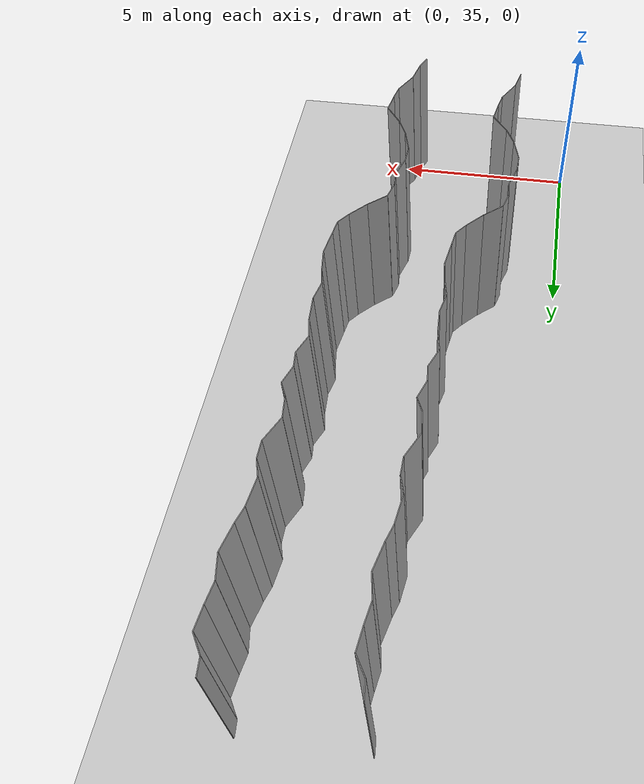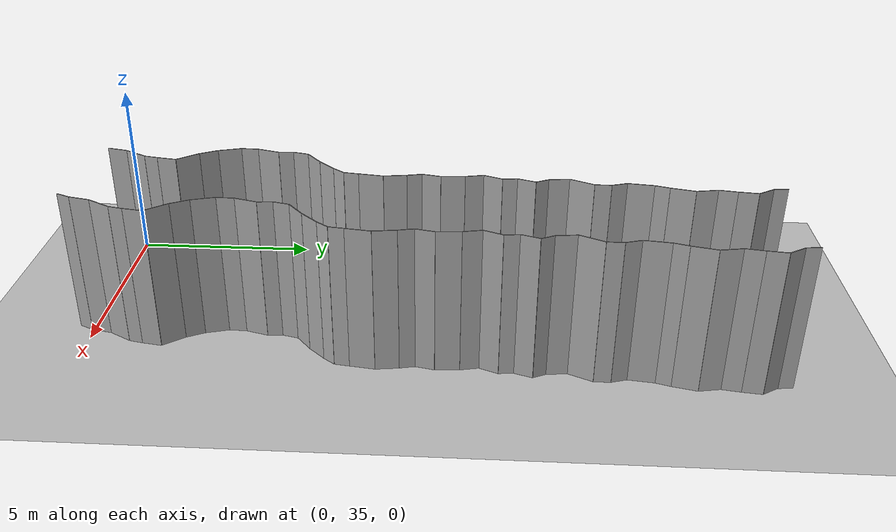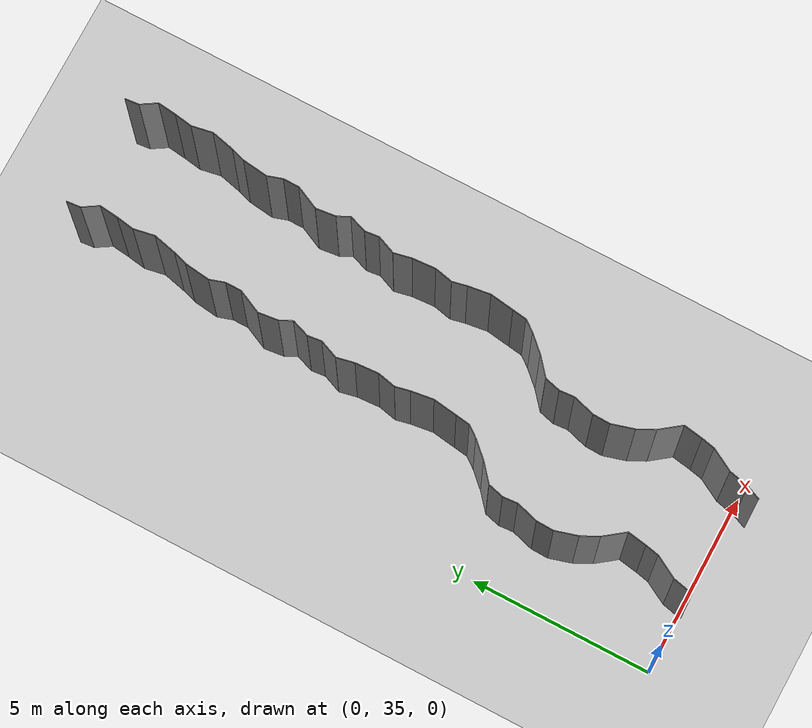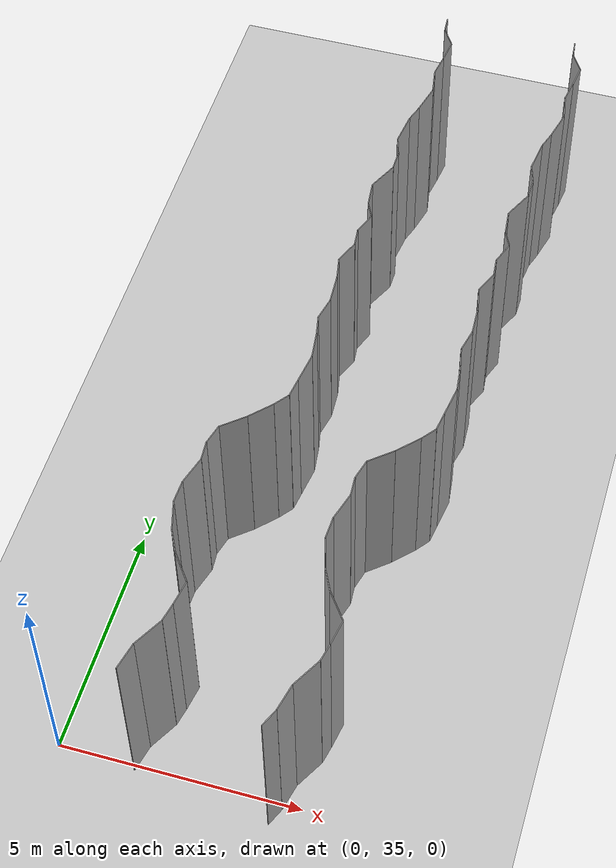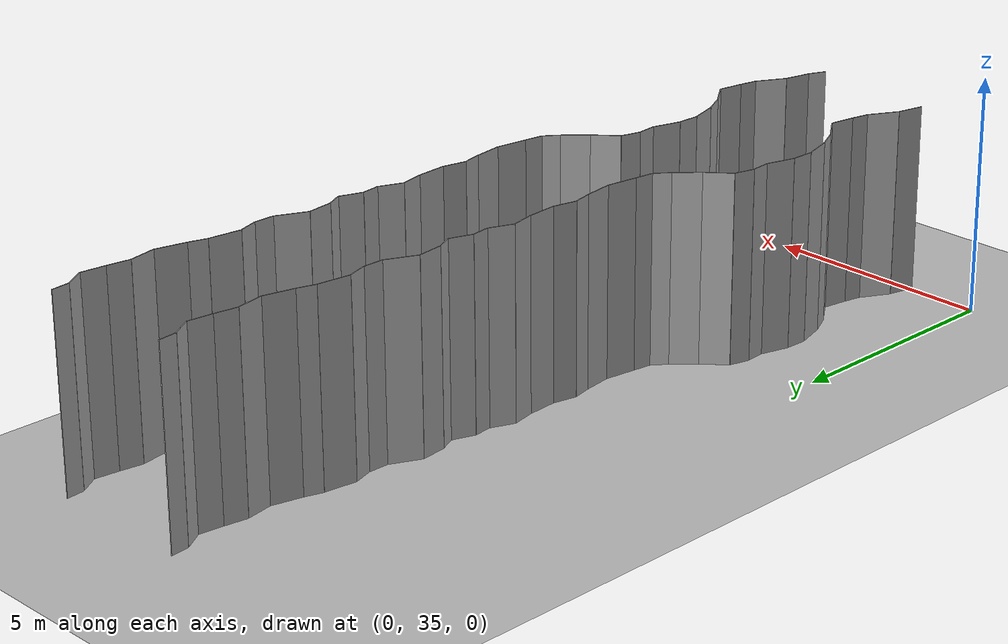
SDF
<sdf version="1.6">
 <world name="default">
  <model name="ground_plane">
   <static>1</static>
   <link name="link">
    <collision name="collision">
     <geometry><plane><normal>0 0 1</normal><size>200 200</size></plane></geometry>
     <surface><friction><ode><mu>100</mu><mu2>50</mu2></ode></friction></surface>
    </collision>
    <visual name="visual">
     <cast_shadows>0</cast_shadows>
     <geometry><plane><normal>0 0 1</normal><size>200 200</size></plane></geometry>
     <material>
      <script><uri>file://media/materials/scripts/gazebo.material</uri><name>Gazebo/Grey</name></script>
     </material>
    </visual>
   </link>
   <pose>0 100 0 0 -0 0</pose>
  </model>
  <model name="wall_149">
   <static>1</static>
   <pose>4.525526112197818 34.72610325198377 2 0 0 -0.40956759334759857</pose>
   <link name="link">
    <collision name="collision"><geometry><box><size>0.02 0.401568903811 4</size></box></geometry></collision>
    <visual name="visual">
     <material>
      <script><name>Gazebo/Grey</name><uri>file://media/materials/scripts/gazebo.material</uri></script>
     </material>
     <geometry><box><size>0.02 0.401568903811 4</size></box></geometry>
    </visual>
   </link>
  </model>
  <model name="wall_150">
   <static>1</static>
   <pose>1.669319965520479 35.19154989431149 2 0 0 -0.2231867968749821</pose>
   <link name="link">
    <collision name="collision"><geometry><box><size>0.02 0.576844347011 4</size></box></geometry></collision>
    <visual name="visual">
     <material>
      <script><name>Gazebo/Grey</name><uri>file://media/materials/scripts/gazebo.material</uri></script>
     </material>
     <geometry><box><size>0.02 0.576844347011 4</size></box></geometry>
    </visual>
   </link>
  </model>
  <model name="wall_151">
   <static>1</static>
   <pose>4.669319965520479 35.19154989431149 2 0 0 -0.2231867968749821</pose>
   <link name="link">
    <collision name="collision"><geometry><box><size>0.02 0.576844347011 4</size></box></geometry></collision>
    <visual name="visual">
     <material>
      <script><name>Gazebo/Grey</name><uri>file://media/materials/scripts/gazebo.material</uri></script>
     </material>
     <geometry><box><size>0.02 0.576844347011 4</size></box></geometry>
    </visual>
   </link>
  </model>
  <model name="wall_152">
   <static>1</static>
   <pose>1.8995381412124028 35.77302271608232 2 0 0 -0.5060773053956457</pose>
   <link name="link">
    <collision name="collision"><geometry><box><size>0.02 0.686453838032 4</size></box></geometry></collision>
    <visual name="visual">
     <material>
      <script><name>Gazebo/Grey</name><uri>file://media/materials/scripts/gazebo.material</uri></script>
     </material>
     <geometry><box><size>0.02 0.686453838032 4</size></box></geometry>
    </visual>
   </link>
  </model>
  <model name="wall_153">
   <static>1</static>
   <pose>4.899538141212403 35.77302271608232 2 0 0 -0.5060773053956457</pose>
   <link name="link">
    <collision name="collision"><geometry><box><size>0.02 0.686453838032 4</size></box></geometry></collision>
    <visual name="visual">
     <material>
      <script><name>Gazebo/Grey</name><uri>file://media/materials/scripts/gazebo.material</uri></script>
     </material>
     <geometry><box><size>0.02 0.686453838032 4</size></box></geometry>
    </visual>
   </link>
  </model>
  <model name="wall_154">
   <static>1</static>
   <pose>2.10582237814285 36.259652494877 2 0 0 -0.2108712035583142</pose>
   <link name="link">
    <collision name="collision"><geometry><box><size>0.02 0.381296949134 4</size></box></geometry></collision>
    <visual name="visual">
     <material>
      <script><name>Gazebo/Grey</name><uri>file://media/materials/scripts/gazebo.material</uri></script>
     </material>
     <geometry><box><size>0.02 0.381296949134 4</size></box></geometry>
    </visual>
   </link>
  </model>
  <model name="wall_155">
   <static>1</static>
   <pose>5.10582237814285 36.259652494877 2 0 0 -0.2108712035583142</pose>
   <link name="link">
    <collision name="collision"><geometry><box><size>0.02 0.381296949134 4</size></box></geometry></collision>
    <visual name="visual">
     <material>
      <script><name>Gazebo/Grey</name><uri>file://media/materials/scripts/gazebo.material</uri></script>
     </material>
     <geometry><box><size>0.02 0.381296949134 4</size></box></geometry>
    </visual>
   </link>
  </model>
  <model name="wall_156">
   <static>1</static>
   <pose>2.1896428906833068 36.712962715251415 2 0 0 -0.16308714582726258</pose>
   <link name="link">
    <collision name="collision"><geometry><box><size>0.02 0.540947599711 4</size></box></geometry></collision>
    <visual name="visual">
     <material>
      <script><name>Gazebo/Grey</name><uri>file://media/materials/scripts/gazebo.material</uri></script>
     </material>
     <geometry><box><size>0.02 0.540947599711 4</size></box></geometry>
    </visual>
   </link>
  </model>
  <model name="wall_157">
   <static>1</static>
   <pose>5.189642890683307 36.712962715251415 2 0 0 -0.16308714582726258</pose>
   <link name="link">
    <collision name="collision"><geometry><box><size>0.02 0.540947599711 4</size></box></geometry></collision>
    <visual name="visual">
     <material>
      <script><name>Gazebo/Grey</name><uri>file://media/materials/scripts/gazebo.material</uri></script>
     </material>
     <geometry><box><size>0.02 0.540947599711 4</size></box></geometry>
    </visual>
   </link>
  </model>
  <model name="wall_158">
   <static>1</static>
   <pose>2.0280489654575535 37.252151620944325 2 0 0 0.6465059497477155</pose>
   <link name="link">
    <collision name="collision"><geometry><box><size>0.02 0.682300964045 4</size></box></geometry></collision>
    <visual name="visual">
     <material>
      <script><name>Gazebo/Grey</name><uri>file://media/materials/scripts/gazebo.material</uri></script>
     </material>
     <geometry><box><size>0.02 0.682300964045 4</size></box></geometry>
    </visual>
   </link>
  </model>
  <model name="wall_159">
   <static>1</static>
   <pose>5.028048965457554 37.252151620944325 2 0 0 0.6465059497477155</pose>
   <link name="link">
    <collision name="collision"><geometry><box><size>0.02 0.682300964045 4</size></box></geometry></collision>
    <visual name="visual">
     <material>
      <script><name>Gazebo/Grey</name><uri>file://media/materials/scripts/gazebo.material</uri></script>
     </material>
     <geometry><box><size>0.02 0.682300964045 4</size></box></geometry>
    </visual>
   </link>
  </model>
  <model name="wall_160">
   <static>1</static>
   <pose>1.7063426877900505 37.75793447500219 2 0 0 0.4617868712868314</pose>
   <link name="link">
    <collision name="collision"><geometry><box><size>0.02 0.521590013899 4</size></box></geometry></collision>
    <visual name="visual">
     <material>
      <script><name>Gazebo/Grey</name><uri>file://media/materials/scripts/gazebo.material</uri></script>
     </material>
     <geometry><box><size>0.02 0.521590013899 4</size></box></geometry>
    </visual>
   </link>
  </model>
  <model name="wall_161">
   <static>1</static>
   <pose>4.70634268779005 37.75793447500219 2 0 0 0.4617868712868314</pose>
   <link name="link">
    <collision name="collision"><geometry><box><size>0.02 0.521590013899 4</size></box></geometry></collision>
    <visual name="visual">
     <material>
      <script><name>Gazebo/Grey</name><uri>file://media/materials/scripts/gazebo.material</uri></script>
     </material>
     <geometry><box><size>0.02 0.521590013899 4</size></box></geometry>
    </visual>
   </link>
  </model>
  <model name="wall_162">
   <static>1</static>
   <pose>1.5023770742293143 38.29914470893798 2 0 0 0.27783544062013266</pose>
   <link name="link">
    <collision name="collision"><geometry><box><size>0.02 0.640006307208 4</size></box></geometry></collision>
    <visual name="visual">
     <material>
      <script><name>Gazebo/Grey</name><uri>file://media/materials/scripts/gazebo.material</uri></script>
     </material>
     <geometry><box><size>0.02 0.640006307208 4</size></box></geometry>
    </visual>
   </link>
  </model>
  <model name="wall_163">
   <static>1</static>
   <pose>4.502377074229314 38.29914470893798 2 0 0 0.27783544062013266</pose>
   <link name="link">
    <collision name="collision"><geometry><box><size>0.02 0.640006307208 4</size></box></geometry></collision>
    <visual name="visual">
     <material>
      <script><name>Gazebo/Grey</name><uri>file://media/materials/scripts/gazebo.material</uri></script>
     </material>
     <geometry><box><size>0.02 0.640006307208 4</size></box></geometry>
    </visual>
   </link>
  </model>
  <model name="wall_164">
   <static>1</static>
   <pose>1.4225422481068093 38.84440688411586 2 0 0 -0.033389399007947934</pose>
   <link name="link">
    <collision name="collision"><geometry><box><size>0.02 0.475326339894 4</size></box></geometry></collision>
    <visual name="visual">
     <material>
      <script><name>Gazebo/Grey</name><uri>file://media/materials/scripts/gazebo.material</uri></script>
     </material>
     <geometry><box><size>0.02 0.475326339894 4</size></box></geometry>
    </visual>
   </link>
  </model>
  <model name="wall_165">
   <static>1</static>
   <pose>4.42254224810681 38.84440688411586 2 0 0 -0.033389399007947934</pose>
   <link name="link">
    <collision name="collision"><geometry><box><size>0.02 0.475326339894 4</size></box></geometry></collision>
    <visual name="visual">
     <material>
      <script><name>Gazebo/Grey</name><uri>file://media/materials/scripts/gazebo.material</uri></script>
     </material>
     <geometry><box><size>0.02 0.475326339894 4</size></box></geometry>
    </visual>
   </link>
  </model>
  <model name="wall_166">
   <static>1</static>
   <pose>1.5171336835453684 39.381788202727364 2 0 0 -0.28133675624712823</pose>
   <link name="link">
    <collision name="collision"><geometry><box><size>0.02 0.624243255933 4</size></box></geometry></collision>
    <visual name="visual">
     <material>
      <script><name>Gazebo/Grey</name><uri>file://media/materials/scripts/gazebo.material</uri></script>
     </material>
     <geometry><box><size>0.02 0.624243255933 4</size></box></geometry>
    </visual>
   </link>
  </model>
  <model name="wall_167">
   <static>1</static>
   <pose>4.517133683545368 39.381788202727364 2 0 0 -0.28133675624712823</pose>
   <link name="link">
    <collision name="collision"><geometry><box><size>0.02 0.624243255933 4</size></box></geometry></collision>
    <visual name="visual">
     <material>
      <script><name>Gazebo/Grey</name><uri>file://media/materials/scripts/gazebo.material</uri></script>
     </material>
     <geometry><box><size>0.02 0.624243255933 4</size></box></geometry>
    </visual>
   </link>
  </model>
  <model name="wall_168">
   <static>1</static>
   <pose>1.5889416261348888 39.884711855800404 2 0 0 0.07299420017163144</pose>
   <link name="link">
    <collision name="collision"><geometry><box><size>0.02 0.407230485778 4</size></box></geometry></collision>
    <visual name="visual">
     <material>
      <script><name>Gazebo/Grey</name><uri>file://media/materials/scripts/gazebo.material</uri></script>
     </material>
     <geometry><box><size>0.02 0.407230485778 4</size></box></geometry>
    </visual>
   </link>
  </model>
  <model name="wall_169">
   <static>1</static>
   <pose>4.588941626134889 39.884711855800404 2 0 0 0.07299420017163144</pose>
   <link name="link">
    <collision name="collision"><geometry><box><size>0.02 0.407230485778 4</size></box></geometry></collision>
    <visual name="visual">
     <material>
      <script><name>Gazebo/Grey</name><uri>file://media/materials/scripts/gazebo.material</uri></script>
     </material>
     <geometry><box><size>0.02 0.407230485778 4</size></box></geometry>
    </visual>
   </link>
  </model>
  <model name="wall_170">
   <static>1</static>
   <pose>1.6301330669798313 40.30222584860143 2 0 0 -0.2556183403123739</pose>
   <link name="link">
    <collision name="collision"><geometry><box><size>0.02 0.443285527239 4</size></box></geometry></collision>
    <visual name="visual">
     <material>
      <script><name>Gazebo/Grey</name><uri>file://media/materials/scripts/gazebo.material</uri></script>
     </material>
     <geometry><box><size>0.02 0.443285527239 4</size></box></geometry>
    </visual>
   </link>
  </model>
  <model name="wall_171">
   <static>1</static>
   <pose>4.630133066979831 40.30222584860143 2 0 0 -0.2556183403123739</pose>
   <link name="link">
    <collision name="collision"><geometry><box><size>0.02 0.443285527239 4</size></box></geometry></collision>
    <visual name="visual">
     <material>
      <script><name>Gazebo/Grey</name><uri>file://media/materials/scripts/gazebo.material</uri></script>
     </material>
     <geometry><box><size>0.02 0.443285527239 4</size></box></geometry>
    </visual>
   </link>
  </model>
  <model name="wall_172">
   <static>1</static>
   <pose>1.918928231442257 40.71314510662942 2 0 0 -0.8697111795042433</pose>
   <link name="link">
    <collision name="collision"><geometry><box><size>0.02 0.609190396344 4</size></box></geometry></collision>
    <visual name="visual">
     <material>
      <script><name>Gazebo/Grey</name><uri>file://media/materials/scripts/gazebo.material</uri></script>
     </material>
     <geometry><box><size>0.02 0.609190396344 4</size></box></geometry>
    </visual>
   </link>
  </model>
  <model name="wall_173">
   <static>1</static>
   <pose>4.918928231442257 40.71314510662942 2 0 0 -0.8697111795042433</pose>
   <link name="link">
    <collision name="collision"><geometry><box><size>0.02 0.609190396344 4</size></box></geometry></collision>
    <visual name="visual">
     <material>
      <script><name>Gazebo/Grey</name><uri>file://media/materials/scripts/gazebo.material</uri></script>
     </material>
     <geometry><box><size>0.02 0.609190396344 4</size></box></geometry>
    </visual>
   </link>
  </model>
  <model name="wall_174">
   <static>1</static>
   <pose>2.3538531892833716 41.122758099434016 2 0 0 -0.759004642372978</pose>
   <link name="link">
    <collision name="collision"><geometry><box><size>0.02 0.587535248158 4</size></box></geometry></collision>
    <visual name="visual">
     <material>
      <script><name>Gazebo/Grey</name><uri>file://media/materials/scripts/gazebo.material</uri></script>
     </material>
     <geometry><box><size>0.02 0.587535248158 4</size></box></geometry>
    </visual>
   </link>
  </model>
  <model name="wall_175">
   <static>1</static>
   <pose>5.353853189283372 41.122758099434016 2 0 0 -0.759004642372978</pose>
   <link name="link">
    <collision name="collision"><geometry><box><size>0.02 0.587535248158 4</size></box></geometry></collision>
    <visual name="visual">
     <material>
      <script><name>Gazebo/Grey</name><uri>file://media/materials/scripts/gazebo.material</uri></script>
     </material>
     <geometry><box><size>0.02 0.587535248158 4</size></box></geometry>
    </visual>
   </link>
  </model>
  <model name="wall_176">
   <static>1</static>
   <pose>2.670105895705734 41.48515882219641 2 0 0 -0.6525816155577895</pose>
   <link name="link">
    <collision name="collision"><geometry><box><size>0.02 0.37573946489 4</size></box></geometry></collision>
    <visual name="visual">
     <material>
      <script><name>Gazebo/Grey</name><uri>file://media/materials/scripts/gazebo.material</uri></script>
     </material>
     <geometry><box><size>0.02 0.37573946489 4</size></box></geometry>
    </visual>
   </link>
  </model>
  <model name="wall_177">
   <static>1</static>
   <pose>5.670105895705734 41.48515882219641 2 0 0 -0.6525816155577895</pose>
   <link name="link">
    <collision name="collision"><geometry><box><size>0.02 0.37573946489 4</size></box></geometry></collision>
    <visual name="visual">
     <material>
      <script><name>Gazebo/Grey</name><uri>file://media/materials/scripts/gazebo.material</uri></script>
     </material>
     <geometry><box><size>0.02 0.37573946489 4</size></box></geometry>
    </visual>
   </link>
  </model>
  <model name="wall_178">
   <static>1</static>
   <pose>2.812263147881863 41.83257899715399 2 0 0 -0.14074741013584724</pose>
   <link name="link">
    <collision name="collision"><geometry><box><size>0.02 0.400266349703 4</size></box></geometry></collision>
    <visual name="visual">
     <material>
      <script><name>Gazebo/Grey</name><uri>file://media/materials/scripts/gazebo.material</uri></script>
     </material>
     <geometry><box><size>0.02 0.400266349703 4</size></box></geometry>
    </visual>
   </link>
  </model>
  <model name="wall_179">
   <static>1</static>
   <pose>5.812263147881863 41.83257899715399 2 0 0 -0.14074741013584724</pose>
   <link name="link">
    <collision name="collision"><geometry><box><size>0.02 0.400266349703 4</size></box></geometry></collision>
    <visual name="visual">
     <material>
      <script><name>Gazebo/Grey</name><uri>file://media/materials/scripts/gazebo.material</uri></script>
     </material>
     <geometry><box><size>0.02 0.400266349703 4</size></box></geometry>
    </visual>
   </link>
  </model>
  <model name="wall_180">
   <static>1</static>
   <pose>2.8877406783436403 42.361430317595186 2 0 0 -0.14237046020874095</pose>
   <link name="link">
    <collision name="collision"><geometry><box><size>0.02 0.668154452912 4</size></box></geometry></collision>
    <visual name="visual">
     <material>
      <script><name>Gazebo/Grey</name><uri>file://media/materials/scripts/gazebo.material</uri></script>
     </material>
     <geometry><box><size>0.02 0.668154452912 4</size></box></geometry>
    </visual>
   </link>
  </model>
  <model name="wall_181">
   <static>1</static>
   <pose>5.88774067834364 42.361430317595186 2 0 0 -0.14237046020874095</pose>
   <link name="link">
    <collision name="collision"><geometry><box><size>0.02 0.668154452912 4</size></box></geometry></collision>
    <visual name="visual">
     <material>
      <script><name>Gazebo/Grey</name><uri>file://media/materials/scripts/gazebo.material</uri></script>
     </material>
     <geometry><box><size>0.02 0.668154452912 4</size></box></geometry>
    </visual>
   </link>
  </model>
  <model name="wall_182">
   <static>1</static>
   <pose>2.894110329174004 42.99843740477991 2 0 0 0.13316491667817892</pose>
   <link name="link">
    <collision name="collision"><geometry><box><size>0.02 0.61809200553 4</size></box></geometry></collision>
    <visual name="visual">
     <material>
      <script><name>Gazebo/Grey</name><uri>file://media/materials/scripts/gazebo.material</uri></script>
     </material>
     <geometry><box><size>0.02 0.61809200553 4</size></box></geometry>
    </visual>
   </link>
  </model>
  <model name="wall_183">
   <static>1</static>
   <pose>5.894110329174004 42.99843740477991 2 0 0 0.13316491667817892</pose>
   <link name="link">
    <collision name="collision"><geometry><box><size>0.02 0.61809200553 4</size></box></geometry></collision>
    <visual name="visual">
     <material>
      <script><name>Gazebo/Grey</name><uri>file://media/materials/scripts/gazebo.material</uri></script>
     </material>
     <geometry><box><size>0.02 0.61809200553 4</size></box></geometry>
    </visual>
   </link>
  </model>
  <model name="wall_184">
   <static>1</static>
   <pose>2.8100992275912113 43.50507734643206 2 0 0 0.2113351714164971</pose>
   <link name="link">
    <collision name="collision"><geometry><box><size>0.02 0.409776898349 4</size></box></geometry></collision>
    <visual name="visual">
     <material>
      <script><name>Gazebo/Grey</name><uri>file://media/materials/scripts/gazebo.material</uri></script>
     </material>
     <geometry><box><size>0.02 0.409776898349 4</size></box></geometry>
    </visual>
   </link>
  </model>
  <model name="wall_185">
   <static>1</static>
   <pose>5.810099227591211 43.50507734643206 2 0 0 0.2113351714164971</pose>
   <link name="link">
    <collision name="collision"><geometry><box><size>0.02 0.409776898349 4</size></box></geometry></collision>
    <visual name="visual">
     <material>
      <script><name>Gazebo/Grey</name><uri>file://media/materials/scripts/gazebo.material</uri></script>
     </material>
     <geometry><box><size>0.02 0.409776898349 4</size></box></geometry>
    </visual>
   </link>
  </model>
  <model name="wall_186">
   <static>1</static>
   <pose>2.821614647251668 43.95392560488302 2 0 0 -0.21585914736747658</pose>
   <link name="link">
    <collision name="collision"><geometry><box><size>0.02 0.508845360675 4</size></box></geometry></collision>
    <visual name="visual">
     <material>
      <script><name>Gazebo/Grey</name><uri>file://media/materials/scripts/gazebo.material</uri></script>
     </material>
     <geometry><box><size>0.02 0.508845360675 4</size></box></geometry>
    </visual>
   </link>
  </model>
  <model name="wall_187">
   <static>1</static>
   <pose>5.821614647251668 43.95392560488302 2 0 0 -0.21585914736747658</pose>
   <link name="link">
    <collision name="collision"><geometry><box><size>0.02 0.508845360675 4</size></box></geometry></collision>
    <visual name="visual">
     <material>
      <script><name>Gazebo/Grey</name><uri>file://media/materials/scripts/gazebo.material</uri></script>
     </material>
     <geometry><box><size>0.02 0.508845360675 4</size></box></geometry>
    </visual>
   </link>
  </model>
  <model name="wall_188">
   <static>1</static>
   <pose>2.856816473265146 44.521043158888986 2 0 0 0.06047911349990318</pose>
   <link name="link">
    <collision name="collision"><geometry><box><size>0.02 0.6383657824 4</size></box></geometry></collision>
    <visual name="visual">
     <material>
      <script><name>Gazebo/Grey</name><uri>file://media/materials/scripts/gazebo.material</uri></script>
     </material>
     <geometry><box><size>0.02 0.6383657824 4</size></box></geometry>
    </visual>
   </link>
  </model>
  <model name="wall_189">
   <static>1</static>
   <pose>5.856816473265146 44.521043158888986 2 0 0 0.06047911349990318</pose>
   <link name="link">
    <collision name="collision"><geometry><box><size>0.02 0.6383657824 4</size></box></geometry></collision>
    <visual name="visual">
     <material>
      <script><name>Gazebo/Grey</name><uri>file://media/materials/scripts/gazebo.material</uri></script>
     </material>
     <geometry><box><size>0.02 0.6383657824 4</size></box></geometry>
    </visual>
   </link>
  </model>
  <model name="wall_190">
   <static>1</static>
   <pose>2.7872029318264797 45.08363386079077 2 0 0 0.20339076573070164</pose>
   <link name="link">
    <collision name="collision"><geometry><box><size>0.02 0.498253087709 4</size></box></geometry></collision>
    <visual name="visual">
     <material>
      <script><name>Gazebo/Grey</name><uri>file://media/materials/scripts/gazebo.material</uri></script>
     </material>
     <geometry><box><size>0.02 0.498253087709 4</size></box></geometry>
    </visual>
   </link>
  </model>
  <model name="wall_191">
   <static>1</static>
   <pose>5.78720293182648 45.08363386079077 2 0 0 0.20339076573070164</pose>
   <link name="link">
    <collision name="collision"><geometry><box><size>0.02 0.498253087709 4</size></box></geometry></collision>
    <visual name="visual">
     <material>
      <script><name>Gazebo/Grey</name><uri>file://media/materials/scripts/gazebo.material</uri></script>
     </material>
     <geometry><box><size>0.02 0.498253087709 4</size></box></geometry>
    </visual>
   </link>
  </model>
  <model name="wall_192">
   <static>1</static>
   <pose>2.8371596493246103 45.572363375834904 2 0 0 -0.3888715506160813</pose>
   <link name="link">
    <collision name="collision"><geometry><box><size>0.02 0.528970548456 4</size></box></geometry></collision>
    <visual name="visual">
     <material>
      <script><name>Gazebo/Grey</name><uri>file://media/materials/scripts/gazebo.material</uri></script>
     </material>
     <geometry><box><size>0.02 0.528970548456 4</size></box></geometry>
    </visual>
   </link>
  </model>
  <model name="wall_193">
   <static>1</static>
   <pose>5.83715964932461 45.572363375834904 2 0 0 -0.3888715506160813</pose>
   <link name="link">
    <collision name="collision"><geometry><box><size>0.02 0.528970548456 4</size></box></geometry></collision>
    <visual name="visual">
     <material>
      <script><name>Gazebo/Grey</name><uri>file://media/materials/scripts/gazebo.material</uri></script>
     </material>
     <geometry><box><size>0.02 0.528970548456 4</size></box></geometry>
    </visual>
   </link>
  </model>
  <model name="wall_194">
   <static>1</static>
   <pose>2.9164078122848722 46.01203997398017 2 0 0 0.10746440665471249</pose>
   <link name="link">
    <collision name="collision"><geometry><box><size>0.02 0.392139064477 4</size></box></geometry></collision>
    <visual name="visual">
     <material>
      <script><name>Gazebo/Grey</name><uri>file://media/materials/scripts/gazebo.material</uri></script>
     </material>
     <geometry><box><size>0.02 0.392139064477 4</size></box></geometry>
    </visual>
   </link>
  </model>
  <model name="wall_195">
   <static>1</static>
   <pose>5.916407812284872 46.01203997398017 2 0 0 0.10746440665471249</pose>
   <link name="link">
    <collision name="collision"><geometry><box><size>0.02 0.392139064477 4</size></box></geometry></collision>
    <visual name="visual">
     <material>
      <script><name>Gazebo/Grey</name><uri>file://media/materials/scripts/gazebo.material</uri></script>
     </material>
     <geometry><box><size>0.02 0.392139064477 4</size></box></geometry>
    </visual>
   </link>
  </model>
  <model name="wall_196">
   <static>1</static>
   <pose>2.979396396870057 46.44294293081425 2 0 0 -0.3420671172293023</pose>
   <link name="link">
    <collision name="collision"><geometry><box><size>0.02 0.500952538716 4</size></box></geometry></collision>
    <visual name="visual">
     <material>
      <script><name>Gazebo/Grey</name><uri>file://media/materials/scripts/gazebo.material</uri></script>
     </material>
     <geometry><box><size>0.02 0.500952538716 4</size></box></geometry>
    </visual>
   </link>
  </model>
  <model name="wall_197">
   <static>1</static>
   <pose>5.979396396870057 46.44294293081425 2 0 0 -0.3420671172293023</pose>
   <link name="link">
    <collision name="collision"><geometry><box><size>0.02 0.500952538716 4</size></box></geometry></collision>
    <visual name="visual">
     <material>
      <script><name>Gazebo/Grey</name><uri>file://media/materials/scripts/gazebo.material</uri></script>
     </material>
     <geometry><box><size>0.02 0.500952538716 4</size></box></geometry>
    </visual>
   </link>
  </model>
  <model name="wall_198">
   <static>1</static>
   <pose>2.9823545477436078 46.846399477843434 2 0 0 0.45073804148797164</pose>
   <link name="link">
    <collision name="collision"><geometry><box><size>0.02 0.372152516886 4</size></box></geometry></collision>
    <visual name="visual">
     <material>
      <script><name>Gazebo/Grey</name><uri>file://media/materials/scripts/gazebo.material</uri></script>
     </material>
     <geometry><box><size>0.02 0.372152516886 4</size></box></geometry>
    </visual>
   </link>
  </model>
  <model name="wall_199">
   <static>1</static>
   <pose>5.982354547743608 46.846399477843434 2 0 0 0.45073804148797164</pose>
   <link name="link">
    <collision name="collision"><geometry><box><size>0.02 0.372152516886 4</size></box></geometry></collision>
    <visual name="visual">
     <material>
      <script><name>Gazebo/Grey</name><uri>file://media/materials/scripts/gazebo.material</uri></script>
     </material>
     <geometry><box><size>0.02 0.372152516886 4</size></box></geometry>
    </visual>
   </link>
  </model>
  <model name="wall_200">
   <static>1</static>
   <pose>2.8702843090788552 47.28732000639712 2 0 0 0.11292864393915172</pose>
   <link name="link">
    <collision name="collision"><geometry><box><size>0.02 0.550362587968 4</size></box></geometry></collision>
    <visual name="visual">
     <material>
      <script><name>Gazebo/Grey</name><uri>file://media/materials/scripts/gazebo.material</uri></script>
     </material>
     <geometry><box><size>0.02 0.550362587968 4</size></box></geometry>
    </visual>
   </link>
  </model>
  <model name="wall_201">
   <static>1</static>
   <pose>5.870284309078855 47.28732000639712 2 0 0 0.11292864393915172</pose>
   <link name="link">
    <collision name="collision"><geometry><box><size>0.02 0.550362587968 4</size></box></geometry></collision>
    <visual name="visual">
     <material>
      <script><name>Gazebo/Grey</name><uri>file://media/materials/scripts/gazebo.material</uri></script>
     </material>
     <geometry><box><size>0.02 0.550362587968 4</size></box></geometry>
    </visual>
   </link>
  </model>
  <model name="wall_202">
   <static>1</static>
   <pose>2.985554951011897 47.872102189672994 2 0 0 -0.4392141998835332</pose>
   <link name="link">
    <collision name="collision"><geometry><box><size>0.02 0.688009033762 4</size></box></geometry></collision>
    <visual name="visual">
     <material>
      <script><name>Gazebo/Grey</name><uri>file://media/materials/scripts/gazebo.material</uri></script>
     </material>
     <geometry><box><size>0.02 0.688009033762 4</size></box></geometry>
    </visual>
   </link>
  </model>
  <model name="wall_203">
   <static>1</static>
   <pose>5.985554951011897 47.872102189672994 2 0 0 -0.4392141998835332</pose>
   <link name="link">
    <collision name="collision"><geometry><box><size>0.02 0.688009033762 4</size></box></geometry></collision>
    <visual name="visual">
     <material>
      <script><name>Gazebo/Grey</name><uri>file://media/materials/scripts/gazebo.material</uri></script>
     </material>
     <geometry><box><size>0.02 0.688009033762 4</size></box></geometry>
    </visual>
   </link>
  </model>
  <model name="wall_204">
   <static>1</static>
   <pose>3.1333269076921177 48.40126830812267 2 0 0 -0.006847406048328184</pose>
   <link name="link">
    <collision name="collision"><geometry><box><size>0.02 0.435635045383 4</size></box></geometry></collision>
    <visual name="visual">
     <material>
      <script><name>Gazebo/Grey</name><uri>file://media/materials/scripts/gazebo.material</uri></script>
     </material>
     <geometry><box><size>0.02 0.435635045383 4</size></box></geometry>
    </visual>
   </link>
  </model>
  <model name="wall_205">
   <static>1</static>
   <pose>6.133326907692117 48.40126830812267 2 0 0 -0.006847406048328184</pose>
   <link name="link">
    <collision name="collision"><geometry><box><size>0.02 0.435635045383 4</size></box></geometry></collision>
    <visual name="visual">
     <material>
      <script><name>Gazebo/Grey</name><uri>file://media/materials/scripts/gazebo.material</uri></script>
     </material>
     <geometry><box><size>0.02 0.435635045383 4</size></box></geometry>
    </visual>
   </link>
  </model>
  <model name="wall_206">
   <static>1</static>
   <pose>3.0698376551769218 48.82550249589074 2 0 0 0.30497513112337205</pose>
   <link name="link">
    <collision name="collision"><geometry><box><size>0.02 0.432816092437 4</size></box></geometry></collision>
    <visual name="visual">
     <material>
      <script><name>Gazebo/Grey</name><uri>file://media/materials/scripts/gazebo.material</uri></script>
     </material>
     <geometry><box><size>0.02 0.432816092437 4</size></box></geometry>
    </visual>
   </link>
  </model>
  <model name="wall_207">
   <static>1</static>
   <pose>6.069837655176922 48.82550249589074 2 0 0 0.30497513112337205</pose>
   <link name="link">
    <collision name="collision"><geometry><box><size>0.02 0.432816092437 4</size></box></geometry></collision>
    <visual name="visual">
     <material>
      <script><name>Gazebo/Grey</name><uri>file://media/materials/scripts/gazebo.material</uri></script>
     </material>
     <geometry><box><size>0.02 0.432816092437 4</size></box></geometry>
    </visual>
   </link>
  </model>
  <model name="wall_208">
   <static>1</static>
   <pose>3.048440100966307 49.37632885479344 2 0 0 -0.1258773442633339</pose>
   <link name="link">
    <collision name="collision"><geometry><box><size>0.02 0.694302564321 4</size></box></geometry></collision>
    <visual name="visual">
     <material>
      <script><name>Gazebo/Grey</name><uri>file://media/materials/scripts/gazebo.material</uri></script>
     </material>
     <geometry><box><size>0.02 0.694302564321 4</size></box></geometry>
    </visual>
   </link>
  </model>
  <model name="wall_209">
   <static>1</static>
   <pose>6.048440100966307 49.37632885479344 2 0 0 -0.1258773442633339</pose>
   <link name="link">
    <collision name="collision"><geometry><box><size>0.02 0.694302564321 4</size></box></geometry></collision>
    <visual name="visual">
     <material>
      <script><name>Gazebo/Grey</name><uri>file://media/materials/scripts/gazebo.material</uri></script>
     </material>
     <geometry><box><size>0.02 0.694302564321 4</size></box></geometry>
    </visual>
   </link>
  </model>
  <model name="wall_210">
   <static>1</static>
   <pose>3.151474665275361 49.907987992796706 2 0 0 -0.30742417289594576</pose>
   <link name="link">
    <collision name="collision"><geometry><box><size>0.02 0.392931214293 4</size></box></geometry></collision>
    <visual name="visual">
     <material>
      <script><name>Gazebo/Grey</name><uri>file://media/materials/scripts/gazebo.material</uri></script>
     </material>
     <geometry><box><size>0.02 0.392931214293 4</size></box></geometry>
    </visual>
   </link>
  </model>
  <model name="wall_211">
   <static>1</static>
   <pose>6.1514746652753605 49.907987992796706 2 0 0 -0.30742417289594576</pose>
   <link name="link">
    <collision name="collision"><geometry><box><size>0.02 0.392931214293 4</size></box></geometry></collision>
    <visual name="visual">
     <material>
      <script><name>Gazebo/Grey</name><uri>file://media/materials/scripts/gazebo.material</uri></script>
     </material>
     <geometry><box><size>0.02 0.392931214293 4</size></box></geometry>
    </visual>
   </link>
  </model>
  <model name="wall_212">
   <static>1</static>
   <pose>3.2869479337223666 50.41361773844104 2 0 0 -0.23439183971515323</pose>
   <link name="link">
    <collision name="collision"><geometry><box><size>0.02 0.65465132841 4</size></box></geometry></collision>
    <visual name="visual">
     <material>
      <script><name>Gazebo/Grey</name><uri>file://media/materials/scripts/gazebo.material</uri></script>
     </material>
     <geometry><box><size>0.02 0.65465132841 4</size></box></geometry>
    </visual>
   </link>
  </model>
  <model name="wall_213">
   <static>1</static>
   <pose>6.286947933722367 50.41361773844104 2 0 0 -0.23439183971515323</pose>
   <link name="link">
    <collision name="collision"><geometry><box><size>0.02 0.65465132841 4</size></box></geometry></collision>
    <visual name="visual">
     <material>
      <script><name>Gazebo/Grey</name><uri>file://media/materials/scripts/gazebo.material</uri></script>
     </material>
     <geometry><box><size>0.02 0.65465132841 4</size></box></geometry>
    </visual>
   </link>
  </model>
  <model name="wall_214">
   <static>1</static>
   <pose>3.3116773168409717 51.01758229554814 2 0 0 0.17770764655328114</pose>
   <link name="link">
    <collision name="collision"><geometry><box><size>0.02 0.580317856028 4</size></box></geometry></collision>
    <visual name="visual">
     <material>
      <script><name>Gazebo/Grey</name><uri>file://media/materials/scripts/gazebo.material</uri></script>
     </material>
     <geometry><box><size>0.02 0.580317856028 4</size></box></geometry>
    </visual>
   </link>
  </model>
  <model name="wall_215">
   <static>1</static>
   <pose>6.311677316840972 51.01758229554814 2 0 0 0.17770764655328114</pose>
   <link name="link">
    <collision name="collision"><geometry><box><size>0.02 0.580317856028 4</size></box></geometry></collision>
    <visual name="visual">
     <material>
      <script><name>Gazebo/Grey</name><uri>file://media/materials/scripts/gazebo.material</uri></script>
     </material>
     <geometry><box><size>0.02 0.580317856028 4</size></box></geometry>
    </visual>
   </link>
  </model>
  <model name="wall_216">
   <static>1</static>
   <pose>3.299205539339518 51.544959984125526 2 0 0 -0.1591979360666076</pose>
   <link name="link">
    <collision name="collision"><geometry><box><size>0.02 0.489769916538 4</size></box></geometry></collision>
    <visual name="visual">
     <material>
      <script><name>Gazebo/Grey</name><uri>file://media/materials/scripts/gazebo.material</uri></script>
     </material>
     <geometry><box><size>0.02 0.489769916538 4</size></box></geometry>
    </visual>
   </link>
  </model>
  <model name="wall_217">
   <static>1</static>
   <pose>6.299205539339518 51.544959984125526 2 0 0 -0.1591979360666076</pose>
   <link name="link">
    <collision name="collision"><geometry><box><size>0.02 0.489769916538 4</size></box></geometry></collision>
    <visual name="visual">
     <material>
      <script><name>Gazebo/Grey</name><uri>file://media/materials/scripts/gazebo.material</uri></script>
     </material>
     <geometry><box><size>0.02 0.489769916538 4</size></box></geometry>
    </visual>
   </link>
  </model>
  <model name="wall_218">
   <static>1</static>
   <pose>3.3685234061750204 52.04407943061278 2 0 0 -0.1179630409990031</pose>
   <link name="link">
    <collision name="collision"><geometry><box><size>0.02 0.518263954153 4</size></box></geometry></collision>
    <visual name="visual">
     <material>
      <script><name>Gazebo/Grey</name><uri>file://media/materials/scripts/gazebo.material</uri></script>
     </material>
     <geometry><box><size>0.02 0.518263954153 4</size></box></geometry>
    </visual>
   </link>
  </model>
  <model name="wall_219">
   <static>1</static>
   <pose>6.36852340617502 52.04407943061278 2 0 0 -0.1179630409990031</pose>
   <link name="link">
    <collision name="collision"><geometry><box><size>0.02 0.518263954153 4</size></box></geometry></collision>
    <visual name="visual">
     <material>
      <script><name>Gazebo/Grey</name><uri>file://media/materials/scripts/gazebo.material</uri></script>
     </material>
     <geometry><box><size>0.02 0.518263954153 4</size></box></geometry>
    </visual>
   </link>
  </model>
  <model name="wall_220">
   <static>1</static>
   <pose>3.269047028447233 52.50859003751508 2 0 0 0.5602856112188693</pose>
   <link name="link">
    <collision name="collision"><geometry><box><size>0.02 0.489148068214 4</size></box></geometry></collision>
    <visual name="visual">
     <material>
      <script><name>Gazebo/Grey</name><uri>file://media/materials/scripts/gazebo.material</uri></script>
     </material>
     <geometry><box><size>0.02 0.489148068214 4</size></box></geometry>
    </visual>
   </link>
  </model>
  <model name="wall_221">
   <static>1</static>
   <pose>6.269047028447233 52.50859003751508 2 0 0 0.5602856112188693</pose>
   <link name="link">
    <collision name="collision"><geometry><box><size>0.02 0.489148068214 4</size></box></geometry></collision>
    <visual name="visual">
     <material>
      <script><name>Gazebo/Grey</name><uri>file://media/materials/scripts/gazebo.material</uri></script>
     </material>
     <geometry><box><size>0.02 0.489148068214 4</size></box></geometry>
    </visual>
   </link>
  </model>
  <model name="wall_222">
   <static>1</static>
   <pose>3.1214714812196718 52.90694520952675 2 0 0 0.09181361056857461</pose>
   <link name="link">
    <collision name="collision"><geometry><box><size>0.02 0.38396861113 4</size></box></geometry></collision>
    <visual name="visual">
     <material>
      <script><name>Gazebo/Grey</name><uri>file://media/materials/scripts/gazebo.material</uri></script>
     </material>
     <geometry><box><size>0.02 0.38396861113 4</size></box></geometry>
    </visual>
   </link>
  </model>
  <model name="wall_223">
   <static>1</static>
   <pose>6.121471481219672 52.90694520952675 2 0 0 0.09181361056857461</pose>
   <link name="link">
    <collision name="collision"><geometry><box><size>0.02 0.38396861113 4</size></box></geometry></collision>
    <visual name="visual">
     <material>
      <script><name>Gazebo/Grey</name><uri>file://media/materials/scripts/gazebo.material</uri></script>
     </material>
     <geometry><box><size>0.02 0.38396861113 4</size></box></geometry>
    </visual>
   </link>
  </model>
 </world>
</sdf>
